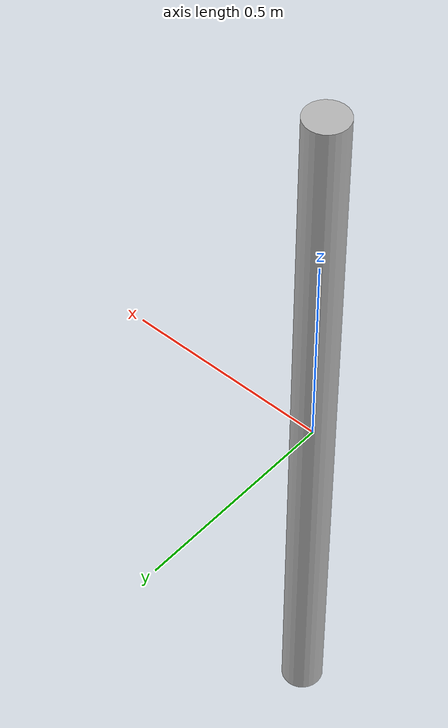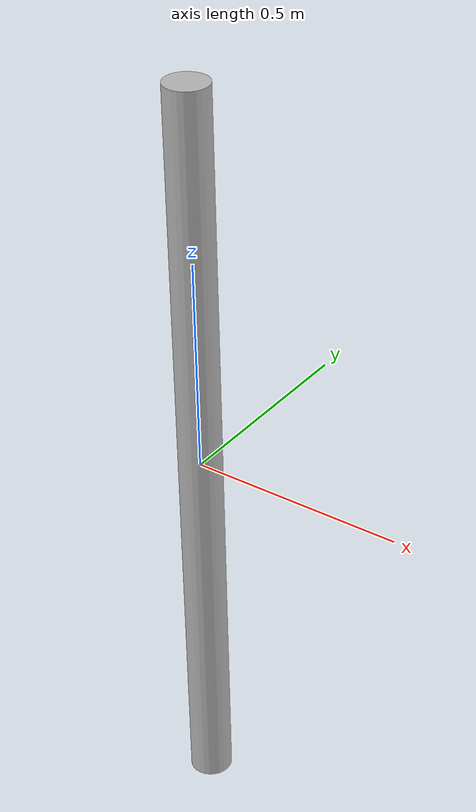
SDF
<?xml version="1.0"?>
<sdf version="1.4">
    <model name="cylinder">
    <static> True </static>
      <link name="link">
        <pose>0 0 0 0 0 0</pose>

        <collision name="cylinder_collision">
        <pose>0 0 0.25 0 0 0</pose>
          <geometry>
            <cylinder>
              <radius>.05</radius>
              <length>1.3</length>
            </cylinder>
          </geometry>
        </collision>

        <visual name="visual">
          <geometry>
            <cylinder>
              <radius>.05</radius>
              <length>1.8</length>
            </cylinder>
          </geometry>
        </visual>

      </link>
    </model>
</sdf>
